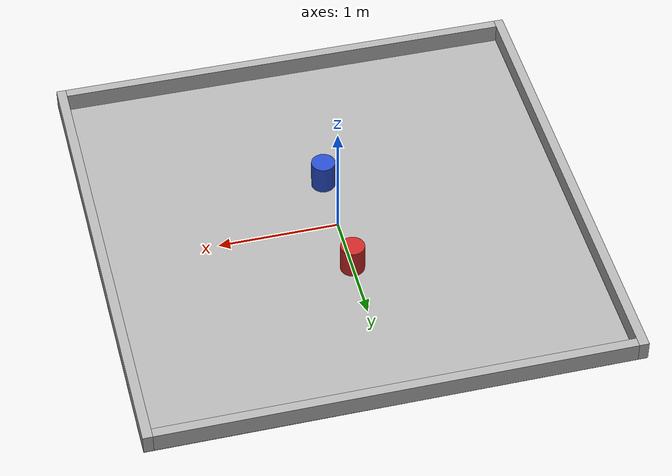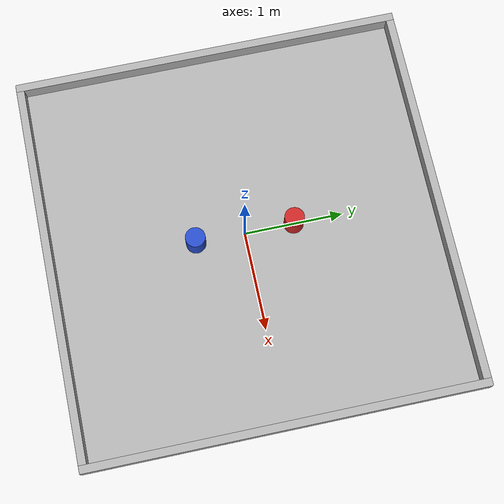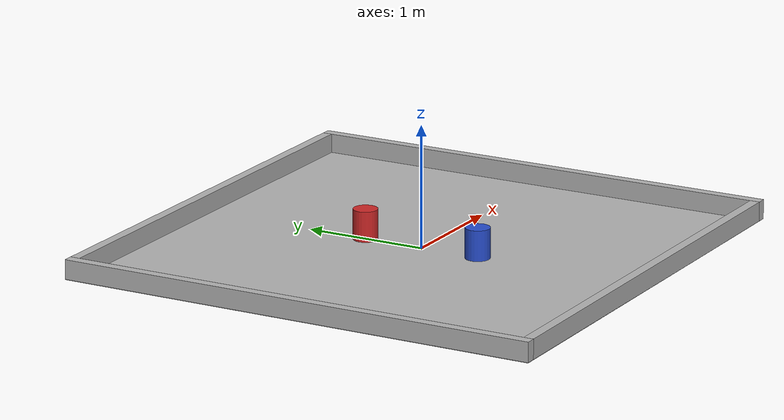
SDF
<?xml version="1.0"?>
<sdf version="1.6">
  <world name="default">

    <plugin
      filename="gz-sim-physics-system"
      name="gz::sim::systems::Physics">
    </plugin>
    <plugin
      filename="gz-sim-user-commands-system"
      name="gz::sim::systems::UserCommands">
    </plugin>
    <plugin
      filename="gz-sim-scene-broadcaster-system"
      name="gz::sim::systems::SceneBroadcaster">
    </plugin>
    <plugin
      filename="gz-sim-sensors-system"
      name="gz::sim::systems::Sensors">
      <render_engine>ogre2</render_engine>
    </plugin>
    <plugin
      filename="gz-sim-imu-system"
      name="gz::sim::systems::Imu">
    </plugin>

    <include>
      <uri>model://fig_eight_floor</uri>
    </include>

    <include>
      <uri>https://fuel.gazebosim.org/1.0/OpenRobotics/models/Sun</uri>
    </include>

    <scene>
      <shadows>false</shadows>
    </scene>

    <physics type="ode">
      <real_time_update_rate>1000.0</real_time_update_rate>
      <max_step_size>0.001</max_step_size>
      <real_time_factor>1</real_time_factor>
      <ode>
        <solver>
          <type>quick</type>
          <iters>150</iters>
          <precon_iters>0</precon_iters>
          <sor>1.400000</sor>
          <use_dynamic_moi_rescaling>1</use_dynamic_moi_rescaling>
        </solver>
        <constraints>
          <cfm>0.00001</cfm>
          <erp>0.2</erp>
          <contact_max_correcting_vel>2000.000000</contact_max_correcting_vel>
          <contact_surface_layer>0.01000</contact_surface_layer>
        </constraints>
      </ode>
    </physics>

    <include>
      <uri>model://cr5_arena_walls</uri>
    </include>

    <include>
      <uri>model://beacon_blue</uri>
      <pose>0 -0.5 0 0 0 0</pose>
    </include>

    <include>
      <uri>model://beacon_red</uri>
      <pose>0 0.5 0 0 0 0</pose>
    </include>

  </world>
</sdf>

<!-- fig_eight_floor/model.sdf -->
<sdf version="1.4">
<model name="fig_eight_floor">
  <static>true</static>
    <link name="floor">
      <collision name="collision">
        <geometry>
          <plane>
            <normal>0 0 1</normal>
            <size>4 4</size>
          </plane>
        </geometry>
        <surface>
          <friction>
            <ode>
              <mu>100</mu>
              <mu2>50</mu2>
            </ode>
          </friction>
        </surface>
      </collision>
      <visual name="visual">
        <cast_shadows>false</cast_shadows>
        <geometry>
          <plane>
            <normal>0 0 1</normal>
            <size>4 4</size>
          </plane>
        </geometry>
        <material>
          <diffuse>0.7 0.7 0.7 1</diffuse>
          <pbr>
            <metal>
              <albedo_map>materials/textures/floor.png</albedo_map>
              <metalness>0.0</metalness>
              <roughness>0.5</roughness>
            </metal>
          </pbr>
        </material>
      </visual>
    </link>
  </model>
</sdf>

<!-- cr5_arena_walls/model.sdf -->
<sdf version='1.6'>
  <model name='cr5_arena_walls'>
    <static>true</static>
    <pose frame=''>0 0 0.08 0 0 0</pose>

    <link name='Right_Wall'>
      <pose frame=''>0 1.96 0 0 0 0</pose>
      <collision name='Right_Wall_Collision'>
        <geometry>
          <box>
            <size>3.84 0.08 0.16</size>
          </box>
        </geometry>
      </collision>
      <visual name='Right_Wall_Visual'>
        <geometry>
          <box>
            <size>3.84 0.08 0.16</size>
          </box>
        </geometry>
        <material>
          <!-- Light Grey -->
          <diffuse>0.7 0.7 0.7 1</diffuse>
          <pbr>
            <metal>
              <metalness>0.0</metalness>
              <roughness>0.9</roughness>
            </metal>
          </pbr>
        </material>
      </visual>
    </link>

    <link name='Back_Wall'>
      <pose frame=''>-1.96 0 0 0 0 0</pose>
      <collision name='Back_Wall_Collision'>
        <geometry>
          <box>
            <size>0.08 4.00 0.16</size>
          </box>
        </geometry>
      </collision>
      <visual name='Back_Wall_Visual'>
        <geometry>
          <box>
            <size>0.08 4.00 0.16</size>
          </box>
        </geometry>
        <material>
          <!-- Light Grey -->
          <diffuse>0.7 0.7 0.7 1</diffuse>
          <pbr>
            <metal>
              <metalness>0.0</metalness>
              <roughness>0.9</roughness>
            </metal>
          </pbr>
        </material>
      </visual>
    </link>

    <link name='Left_Wall'>
      <pose frame=''>0 -1.96 0 0 0 0</pose>
      <collision name='Left_Wall_Collision'>
        <geometry>
          <box>
            <size>3.84 0.08 0.16</size>
          </box>
        </geometry>
      </collision>
      <visual name='Left_Wall_Visual'>
        <geometry>
          <box>
            <size>3.84 0.08 0.16</size>
          </box>
        </geometry>
        <material>
          <!-- Light Grey -->
          <diffuse>0.7 0.7 0.7 1</diffuse>
          <pbr>
            <metal>
              <metalness>0.0</metalness>
              <roughness>0.9</roughness>
            </metal>
          </pbr>
        </material>
      </visual>
    </link>

    <link name='Front_Wall'>
      <pose frame=''>1.96 0 0 0 0 0</pose>
      <collision name='Front_Wall_Collision'>
        <geometry>
          <box>
            <size>0.08 4.00 0.16</size>
          </box>
        </geometry>
      </collision>
      <visual name='Front_Wall_Visual'>
        <geometry>
          <box>
            <size>0.08 4.00 0.16</size>
          </box>
        </geometry>
        <material>
          <!-- Light Grey -->
          <diffuse>0.7 0.7 0.7 1</diffuse>
          <pbr>
            <metal>
              <metalness>0.0</metalness>
              <roughness>0.9</roughness>
            </metal>
          </pbr>
        </material>
      </visual>
    </link>

  </model>
</sdf>

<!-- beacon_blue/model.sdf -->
<sdf version="1.4">
<model name="beacon_blue">
  <static>false</static>
  <link name='beacon_blue'>
    <pose frame=''>0 0 0.125 0 0 0</pose>
    <collision name='coll'>
      <geometry>
        <cylinder>
          <radius>0.1</radius>
          <length>0.25</length>
        </cylinder>
      </geometry>
      <max_contacts>10</max_contacts>
    </collision>
    <visual name='vis'>
      <geometry>
        <cylinder>
          <radius>0.1</radius>
          <length>0.25</length>
        </cylinder>
      </geometry>
      <material>
        <script>
          <uri>file://media/materials/scripts/gazebo.material</uri>
          <name>Gazebo/Blue</name>
        </script>
      </material>
    </visual>
  </link>
  </model>
</sdf>

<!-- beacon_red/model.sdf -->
<sdf version="1.4">
<model name="beacon_red">
  <static>false</static>
  <link name='beacon_red'>
    <pose frame=''>0 0 0.125 0 0 0</pose>
    <collision name='coll'>
      <geometry>
        <cylinder>
          <radius>0.1</radius>
          <length>0.25</length>
        </cylinder>
      </geometry>
      <max_contacts>10</max_contacts>
    </collision>
    <visual name='vis'>
      <geometry>
        <cylinder>
          <radius>0.1</radius>
          <length>0.25</length>
        </cylinder>
      </geometry>
      <material>
        <script>
          <uri>file://media/materials/scripts/gazebo.material</uri>
          <name>Gazebo/Red</name>
        </script>
      </material>
    </visual>
  </link>
  </model>
</sdf>
